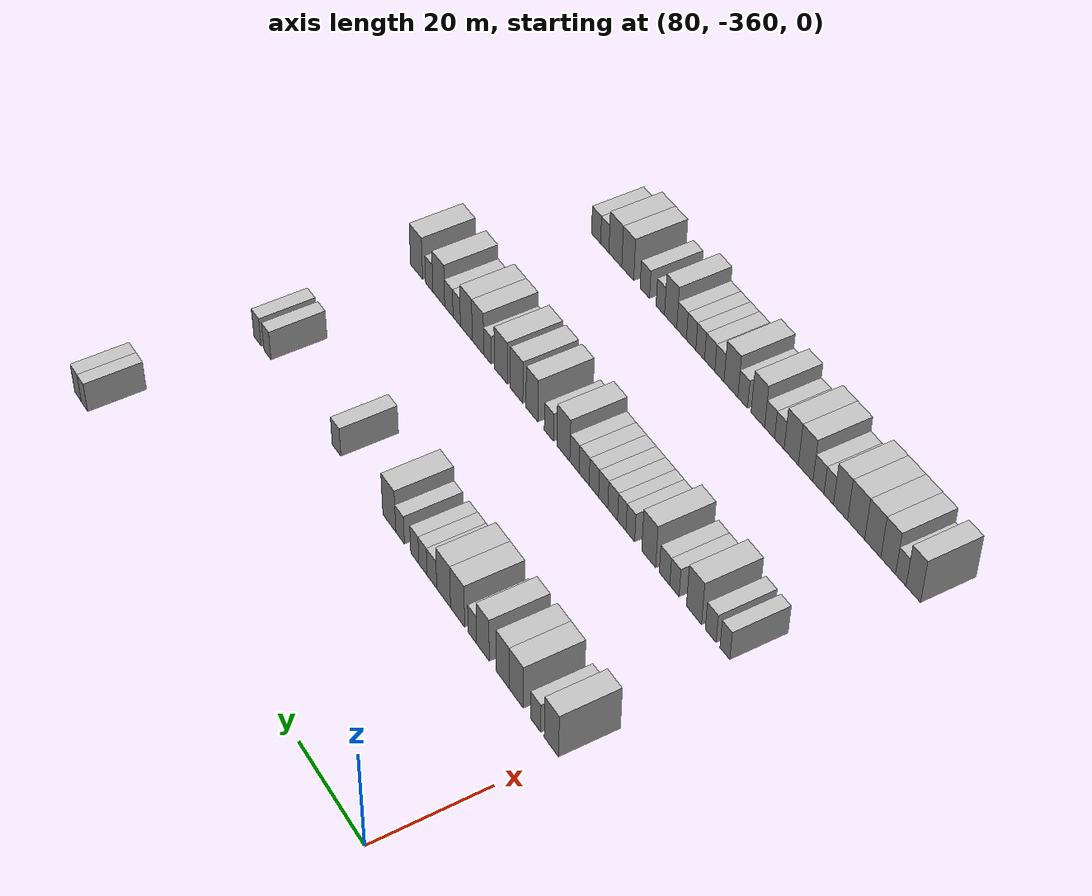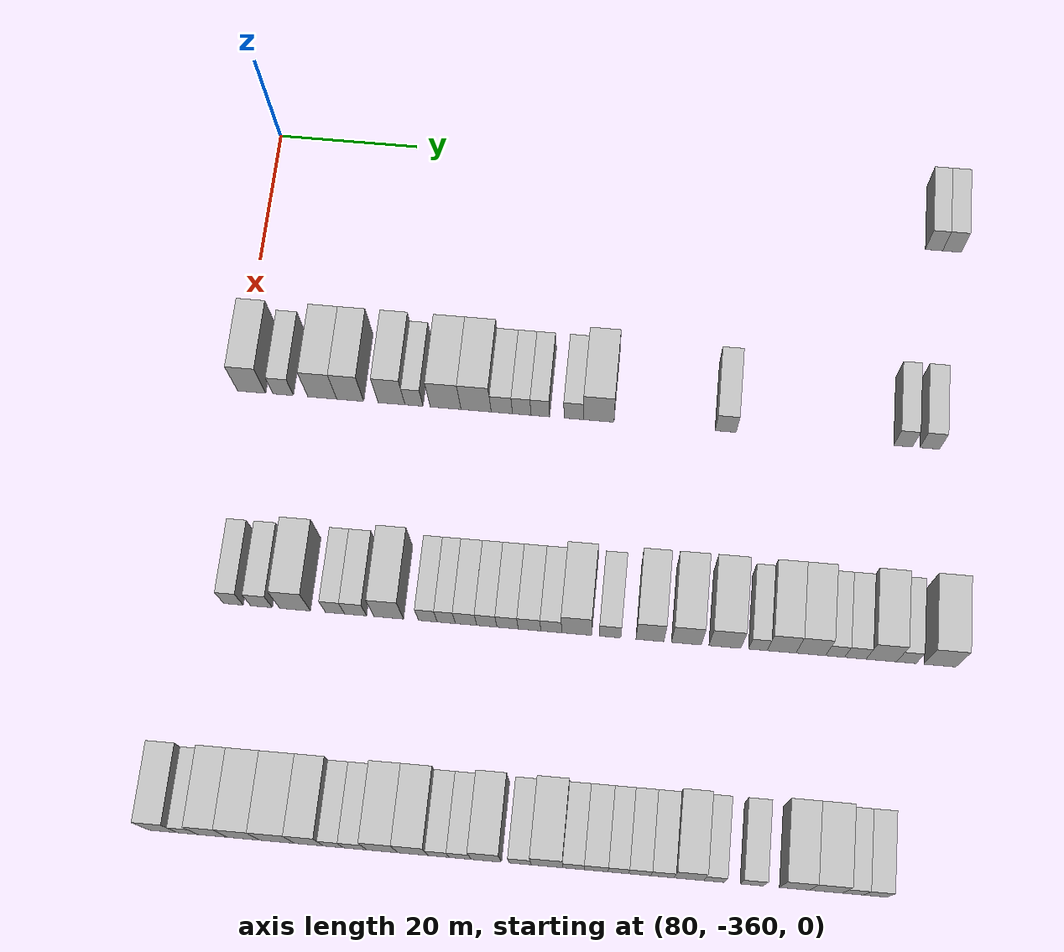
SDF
<sdf version="1.6">
 <world name="default">
  <model name="building_488">
   <static>1</static>
   <pose>85.0000 -264.5834 0 0.000000 0.000000 0.000000</pose>
   <link name="link">
    <pose>0 0 3.00 0 0 0</pose>
    <collision name="collision"><geometry><box><size>10.0000 2.4651 6.0000</size></box></geometry></collision>
    <visual name="visual">
     <cast_shadows>0</cast_shadows>
     <geometry><box><size>10.0000 2.4651 6.0000</size></box></geometry>
     <material>
      <script>
       <uri>model://HANNAS_wall/materials/scripts</uri>
       <uri>model://HANNAS_wall/materials/textures</uri>
       <name>vrc/HANNAS_wall</name>
      </script>
     </material>
    </visual>
   </link>
  </model>
  <model name="building_489">
   <static>1</static>
   <pose>85.0000 -262.0159 0 0.000000 0.000000 0.000000</pose>
   <link name="link">
    <pose>0 0 3.00 0 0 0</pose>
    <collision name="collision"><geometry><box><size>10.0000 2.6700 6.0000</size></box></geometry></collision>
    <visual name="visual">
     <cast_shadows>0</cast_shadows>
     <geometry><box><size>10.0000 2.6700 6.0000</size></box></geometry>
     <material>
      <script>
       <uri>model://HANNAS_wall/materials/scripts</uri>
       <uri>model://HANNAS_wall/materials/textures</uri>
       <name>vrc/HANNAS_wall</name>
      </script>
     </material>
    </visual>
   </link>
  </model>
  <model name="building_702">
   <static>1</static>
   <pose>115.0000 -358.1212 0 0.000000 0.000000 0.000000</pose>
   <link name="link">
    <pose>0 0 4.50 0 0 0</pose>
    <collision name="collision"><geometry><box><size>10.0000 3.9212 9.0000</size></box></geometry></collision>
    <visual name="visual">
     <cast_shadows>0</cast_shadows>
     <geometry><box><size>10.0000 3.9212 9.0000</size></box></geometry>
     <material>
      <script>
       <uri>model://HANNAS_wall/materials/scripts</uri>
       <uri>model://HANNAS_wall/materials/textures</uri>
       <name>vrc/HANNAS_wall</name>
      </script>
     </material>
    </visual>
   </link>
  </model>
  <model name="building_703">
   <static>1</static>
   <pose>115.0000 -353.7324 0 0.000000 0.000000 0.000000</pose>
   <link name="link">
    <pose>0 0 3.00 0 0 0</pose>
    <collision name="collision"><geometry><box><size>10.0000 2.8565 6.0000</size></box></geometry></collision>
    <visual name="visual">
     <cast_shadows>0</cast_shadows>
     <geometry><box><size>10.0000 2.8565 6.0000</size></box></geometry>
     <material>
      <script>
       <uri>model://HANNAS_wall/materials/scripts</uri>
       <uri>model://HANNAS_wall/materials/textures</uri>
       <name>vrc/HANNAS_wall</name>
      </script>
     </material>
    </visual>
   </link>
  </model>
  <model name="building_704">
   <static>1</static>
   <pose>115.0000 -348.2895 0 0.000000 0.000000 0.000000</pose>
   <link name="link">
    <pose>0 0 4.50 0 0 0</pose>
    <collision name="collision"><geometry><box><size>10.0000 4.0292 9.0000</size></box></geometry></collision>
    <visual name="visual">
     <cast_shadows>0</cast_shadows>
     <geometry><box><size>10.0000 4.0292 9.0000</size></box></geometry>
     <material>
      <script>
       <uri>model://HANNAS_wall/materials/scripts</uri>
       <uri>model://HANNAS_wall/materials/textures</uri>
       <name>vrc/HANNAS_wall</name>
      </script>
     </material>
    </visual>
   </link>
  </model>
  <model name="building_705">
   <static>1</static>
   <pose>115.0000 -344.3967 0 0.000000 0.000000 0.000000</pose>
   <link name="link">
    <pose>0 0 4.50 0 0 0</pose>
    <collision name="collision"><geometry><box><size>10.0000 3.7564 9.0000</size></box></geometry></collision>
    <visual name="visual">
     <cast_shadows>0</cast_shadows>
     <geometry><box><size>10.0000 3.7564 9.0000</size></box></geometry>
     <material>
      <script>
       <uri>model://HANNAS_wall/materials/scripts</uri>
       <uri>model://HANNAS_wall/materials/textures</uri>
       <name>vrc/HANNAS_wall</name>
      </script>
     </material>
    </visual>
   </link>
  </model>
  <model name="building_706">
   <static>1</static>
   <pose>115.0000 -338.6489 0 0.000000 0.000000 0.000000</pose>
   <link name="link">
    <pose>0 0 4.50 0 0 0</pose>
    <collision name="collision"><geometry><box><size>10.0000 3.7393 9.0000</size></box></geometry></collision>
    <visual name="visual">
     <cast_shadows>0</cast_shadows>
     <geometry><box><size>10.0000 3.7393 9.0000</size></box></geometry>
     <material>
      <script>
       <uri>model://HANNAS_wall/materials/scripts</uri>
       <uri>model://HANNAS_wall/materials/textures</uri>
       <name>vrc/HANNAS_wall</name>
      </script>
     </material>
    </visual>
   </link>
  </model>
  <model name="building_707">
   <static>1</static>
   <pose>115.0000 -335.5287 0 0.000000 0.000000 0.000000</pose>
   <link name="link">
    <pose>0 0 3.00 0 0 0</pose>
    <collision name="collision"><geometry><box><size>10.0000 2.5011 6.0000</size></box></geometry></collision>
    <visual name="visual">
     <cast_shadows>0</cast_shadows>
     <geometry><box><size>10.0000 2.5011 6.0000</size></box></geometry>
     <material>
      <script>
       <uri>model://HANNAS_wall/materials/scripts</uri>
       <uri>model://HANNAS_wall/materials/textures</uri>
       <name>vrc/HANNAS_wall</name>
      </script>
     </material>
    </visual>
   </link>
  </model>
  <model name="building_708">
   <static>1</static>
   <pose>115.0000 -331.1481 0 0.000000 0.000000 0.000000</pose>
   <link name="link">
    <pose>0 0 4.50 0 0 0</pose>
    <collision name="collision"><geometry><box><size>10.0000 4.2602 9.0000</size></box></geometry></collision>
    <visual name="visual">
     <cast_shadows>0</cast_shadows>
     <geometry><box><size>10.0000 4.2602 9.0000</size></box></geometry>
     <material>
      <script>
       <uri>model://HANNAS_wall/materials/scripts</uri>
       <uri>model://HANNAS_wall/materials/textures</uri>
       <name>vrc/HANNAS_wall</name>
      </script>
     </material>
    </visual>
   </link>
  </model>
  <model name="building_709">
   <static>1</static>
   <pose>115.0000 -326.9180 0 0.000000 0.000000 0.000000</pose>
   <link name="link">
    <pose>0 0 4.50 0 0 0</pose>
    <collision name="collision"><geometry><box><size>10.0000 4.2000 9.0000</size></box></geometry></collision>
    <visual name="visual">
     <cast_shadows>0</cast_shadows>
     <geometry><box><size>10.0000 4.2000 9.0000</size></box></geometry>
     <material>
      <script>
       <uri>model://HANNAS_wall/materials/scripts</uri>
       <uri>model://HANNAS_wall/materials/textures</uri>
       <name>vrc/HANNAS_wall</name>
      </script>
     </material>
    </visual>
   </link>
  </model>
  <model name="building_710">
   <static>1</static>
   <pose>115.0000 -323.3475 0 0.000000 0.000000 0.000000</pose>
   <link name="link">
    <pose>0 0 3.00 0 0 0</pose>
    <collision name="collision"><geometry><box><size>10.0000 2.9410 6.0000</size></box></geometry></collision>
    <visual name="visual">
     <cast_shadows>0</cast_shadows>
     <geometry><box><size>10.0000 2.9410 6.0000</size></box></geometry>
     <material>
      <script>
       <uri>model://HANNAS_wall/materials/scripts</uri>
       <uri>model://HANNAS_wall/materials/textures</uri>
       <name>vrc/HANNAS_wall</name>
      </script>
     </material>
    </visual>
   </link>
  </model>
  <model name="building_711">
   <static>1</static>
   <pose>115.0000 -320.5965 0 0.000000 0.000000 0.000000</pose>
   <link name="link">
    <pose>0 0 3.00 0 0 0</pose>
    <collision name="collision"><geometry><box><size>10.0000 2.5610 6.0000</size></box></geometry></collision>
    <visual name="visual">
     <cast_shadows>0</cast_shadows>
     <geometry><box><size>10.0000 2.5610 6.0000</size></box></geometry>
     <material>
      <script>
       <uri>model://HANNAS_wall/materials/scripts</uri>
       <uri>model://HANNAS_wall/materials/textures</uri>
       <name>vrc/HANNAS_wall</name>
      </script>
     </material>
    </visual>
   </link>
  </model>
  <model name="building_712">
   <static>1</static>
   <pose>115.0000 -318.0344 0 0.000000 0.000000 0.000000</pose>
   <link name="link">
    <pose>0 0 3.00 0 0 0</pose>
    <collision name="collision"><geometry><box><size>10.0000 2.5632 6.0000</size></box></geometry></collision>
    <visual name="visual">
     <cast_shadows>0</cast_shadows>
     <geometry><box><size>10.0000 2.5632 6.0000</size></box></geometry>
     <material>
      <script>
       <uri>model://HANNAS_wall/materials/scripts</uri>
       <uri>model://HANNAS_wall/materials/textures</uri>
       <name>vrc/HANNAS_wall</name>
      </script>
     </material>
    </visual>
   </link>
  </model>
  <model name="building_713">
   <static>1</static>
   <pose>115.0000 -313.4007 0 0.000000 0.000000 0.000000</pose>
   <link name="link">
    <pose>0 0 3.00 0 0 0</pose>
    <collision name="collision"><geometry><box><size>10.0000 2.7044 6.0000</size></box></geometry></collision>
    <visual name="visual">
     <cast_shadows>0</cast_shadows>
     <geometry><box><size>10.0000 2.7044 6.0000</size></box></geometry>
     <material>
      <script>
       <uri>model://HANNAS_wall/materials/scripts</uri>
       <uri>model://HANNAS_wall/materials/textures</uri>
       <name>vrc/HANNAS_wall</name>
      </script>
     </material>
    </visual>
   </link>
  </model>
  <model name="building_714">
   <static>1</static>
   <pose>115.0000 -309.9594 0 0.000000 0.000000 0.000000</pose>
   <link name="link">
    <pose>0 0 4.50 0 0 0</pose>
    <collision name="collision"><geometry><box><size>10.0000 4.1780 9.0000</size></box></geometry></collision>
    <visual name="visual">
     <cast_shadows>0</cast_shadows>
     <geometry><box><size>10.0000 4.1780 9.0000</size></box></geometry>
     <material>
      <script>
       <uri>model://HANNAS_wall/materials/scripts</uri>
       <uri>model://HANNAS_wall/materials/textures</uri>
       <name>vrc/HANNAS_wall</name>
      </script>
     </material>
    </visual>
   </link>
  </model>
  <model name="building_715">
   <static>1</static>
   <pose>115.0000 -292.5074 0 0.000000 0.000000 0.000000</pose>
   <link name="link">
    <pose>0 0 3.00 0 0 0</pose>
    <collision name="collision"><geometry><box><size>10.0000 2.9087 6.0000</size></box></geometry></collision>
    <visual name="visual">
     <cast_shadows>0</cast_shadows>
     <geometry><box><size>10.0000 2.9087 6.0000</size></box></geometry>
     <material>
      <script>
       <uri>model://HANNAS_wall/materials/scripts</uri>
       <uri>model://HANNAS_wall/materials/textures</uri>
       <name>vrc/HANNAS_wall</name>
      </script>
     </material>
    </visual>
   </link>
  </model>
  <model name="building_716">
   <static>1</static>
   <pose>115.0000 -268.2007 0 0.000000 0.000000 0.000000</pose>
   <link name="link">
    <pose>0 0 3.00 0 0 0</pose>
    <collision name="collision"><geometry><box><size>10.0000 2.5682 6.0000</size></box></geometry></collision>
    <visual name="visual">
     <cast_shadows>0</cast_shadows>
     <geometry><box><size>10.0000 2.5682 6.0000</size></box></geometry>
     <material>
      <script>
       <uri>model://HANNAS_wall/materials/scripts</uri>
       <uri>model://HANNAS_wall/materials/textures</uri>
       <name>vrc/HANNAS_wall</name>
      </script>
     </material>
    </visual>
   </link>
  </model>
  <model name="building_717">
   <static>1</static>
   <pose>115.0000 -264.5697 0 0.000000 0.000000 0.000000</pose>
   <link name="link">
    <pose>0 0 3.00 0 0 0</pose>
    <collision name="collision"><geometry><box><size>10.0000 2.6939 6.0000</size></box></geometry></collision>
    <visual name="visual">
     <cast_shadows>0</cast_shadows>
     <geometry><box><size>10.0000 2.6939 6.0000</size></box></geometry>
     <material>
      <script>
       <uri>model://HANNAS_wall/materials/scripts</uri>
       <uri>model://HANNAS_wall/materials/textures</uri>
       <name>vrc/HANNAS_wall</name>
      </script>
     </material>
    </visual>
   </link>
  </model>
  <model name="building_912">
   <static>1</static>
   <pose>145.0000 -355.9528 0 0.000000 0.000000 0.000000</pose>
   <link name="link">
    <pose>0 0 3.00 0 0 0</pose>
    <collision name="collision"><geometry><box><size>10.0000 2.6077 6.0000</size></box></geometry></collision>
    <visual name="visual">
     <cast_shadows>0</cast_shadows>
     <geometry><box><size>10.0000 2.6077 6.0000</size></box></geometry>
     <material>
      <script>
       <uri>model://HANNAS_wall/materials/scripts</uri>
       <uri>model://HANNAS_wall/materials/textures</uri>
       <name>vrc/HANNAS_wall</name>
      </script>
     </material>
    </visual>
   </link>
  </model>
  <model name="building_913">
   <static>1</static>
   <pose>145.0000 -352.2047 0 0.000000 0.000000 0.000000</pose>
   <link name="link">
    <pose>0 0 3.00 0 0 0</pose>
    <collision name="collision"><geometry><box><size>10.0000 2.8885 6.0000</size></box></geometry></collision>
    <visual name="visual">
     <cast_shadows>0</cast_shadows>
     <geometry><box><size>10.0000 2.8885 6.0000</size></box></geometry>
     <material>
      <script>
       <uri>model://HANNAS_wall/materials/scripts</uri>
       <uri>model://HANNAS_wall/materials/textures</uri>
       <name>vrc/HANNAS_wall</name>
      </script>
     </material>
    </visual>
   </link>
  </model>
  <model name="building_914">
   <static>1</static>
   <pose>145.0000 -347.7194 0 0.000000 0.000000 0.000000</pose>
   <link name="link">
    <pose>0 0 4.50 0 0 0</pose>
    <collision name="collision"><geometry><box><size>10.0000 4.0820 9.0000</size></box></geometry></collision>
    <visual name="visual">
     <cast_shadows>0</cast_shadows>
     <geometry><box><size>10.0000 4.0820 9.0000</size></box></geometry>
     <material>
      <script>
       <uri>model://HANNAS_wall/materials/scripts</uri>
       <uri>model://HANNAS_wall/materials/textures</uri>
       <name>vrc/HANNAS_wall</name>
      </script>
     </material>
    </visual>
   </link>
  </model>
  <model name="building_915">
   <static>1</static>
   <pose>145.0000 -342.3995 0 0.000000 0.000000 0.000000</pose>
   <link name="link">
    <pose>0 0 3.00 0 0 0</pose>
    <collision name="collision"><geometry><box><size>10.0000 2.5578 6.0000</size></box></geometry></collision>
    <visual name="visual">
     <cast_shadows>0</cast_shadows>
     <geometry><box><size>10.0000 2.5578 6.0000</size></box></geometry>
     <material>
      <script>
       <uri>model://HANNAS_wall/materials/scripts</uri>
       <uri>model://HANNAS_wall/materials/textures</uri>
       <name>vrc/HANNAS_wall</name>
      </script>
     </material>
    </visual>
   </link>
  </model>
  <model name="building_916">
   <static>1</static>
   <pose>145.0000 -339.6624 0 0.000000 0.000000 0.000000</pose>
   <link name="link">
    <pose>0 0 3.00 0 0 0</pose>
    <collision name="collision"><geometry><box><size>10.0000 2.9163 6.0000</size></box></geometry></collision>
    <visual name="visual">
     <cast_shadows>0</cast_shadows>
     <geometry><box><size>10.0000 2.9163 6.0000</size></box></geometry>
     <material>
      <script>
       <uri>model://HANNAS_wall/materials/scripts</uri>
       <uri>model://HANNAS_wall/materials/textures</uri>
       <name>vrc/HANNAS_wall</name>
      </script>
     </material>
    </visual>
   </link>
  </model>
  <model name="building_917">
   <static>1</static>
   <pose>145.0000 -335.2434 0 0.000000 0.000000 0.000000</pose>
   <link name="link">
    <pose>0 0 4.50 0 0 0</pose>
    <collision name="collision"><geometry><box><size>10.0000 3.9217 9.0000</size></box></geometry></collision>
    <visual name="visual">
     <cast_shadows>0</cast_shadows>
     <geometry><box><size>10.0000 3.9217 9.0000</size></box></geometry>
     <material>
      <script>
       <uri>model://HANNAS_wall/materials/scripts</uri>
       <uri>model://HANNAS_wall/materials/textures</uri>
       <name>vrc/HANNAS_wall</name>
      </script>
     </material>
    </visual>
   </link>
  </model>
  <model name="building_918">
   <static>1</static>
   <pose>145.0000 -330.0368 0 0.000000 0.000000 0.000000</pose>
   <link name="link">
    <pose>0 0 3.00 0 0 0</pose>
    <collision name="collision"><geometry><box><size>10.0000 2.4914 6.0000</size></box></geometry></collision>
    <visual name="visual">
     <cast_shadows>0</cast_shadows>
     <geometry><box><size>10.0000 2.4914 6.0000</size></box></geometry>
     <material>
      <script>
       <uri>model://HANNAS_wall/materials/scripts</uri>
       <uri>model://HANNAS_wall/materials/textures</uri>
       <name>vrc/HANNAS_wall</name>
      </script>
     </material>
    </visual>
   </link>
  </model>
  <model name="building_919">
   <static>1</static>
   <pose>145.0000 -327.5866 0 0.000000 0.000000 0.000000</pose>
   <link name="link">
    <pose>0 0 3.00 0 0 0</pose>
    <collision name="collision"><geometry><box><size>10.0000 2.4090 6.0000</size></box></geometry></collision>
    <visual name="visual">
     <cast_shadows>0</cast_shadows>
     <geometry><box><size>10.0000 2.4090 6.0000</size></box></geometry>
     <material>
      <script>
       <uri>model://HANNAS_wall/materials/scripts</uri>
       <uri>model://HANNAS_wall/materials/textures</uri>
       <name>vrc/HANNAS_wall</name>
      </script>
     </material>
    </visual>
   </link>
  </model>
  <model name="building_920">
   <static>1</static>
   <pose>145.0000 -324.9644 0 0.000000 0.000000 0.000000</pose>
   <link name="link">
    <pose>0 0 3.00 0 0 0</pose>
    <collision name="collision"><geometry><box><size>10.0000 2.8355 6.0000</size></box></geometry></collision>
    <visual name="visual">
     <cast_shadows>0</cast_shadows>
     <geometry><box><size>10.0000 2.8355 6.0000</size></box></geometry>
     <material>
      <script>
       <uri>model://HANNAS_wall/materials/scripts</uri>
       <uri>model://HANNAS_wall/materials/textures</uri>
       <name>vrc/HANNAS_wall</name>
      </script>
     </material>
    </visual>
   </link>
  </model>
  <model name="building_921">
   <static>1</static>
   <pose>145.0000 -322.2116 0 0.000000 0.000000 0.000000</pose>
   <link name="link">
    <pose>0 0 3.00 0 0 0</pose>
    <collision name="collision"><geometry><box><size>10.0000 2.6700 6.0000</size></box></geometry></collision>
    <visual name="visual">
     <cast_shadows>0</cast_shadows>
     <geometry><box><size>10.0000 2.6700 6.0000</size></box></geometry>
     <material>
      <script>
       <uri>model://HANNAS_wall/materials/scripts</uri>
       <uri>model://HANNAS_wall/materials/textures</uri>
       <name>vrc/HANNAS_wall</name>
      </script>
     </material>
    </visual>
   </link>
  </model>
  <model name="building_922">
   <static>1</static>
   <pose>145.0000 -319.4658 0 0.000000 0.000000 0.000000</pose>
   <link name="link">
    <pose>0 0 3.00 0 0 0</pose>
    <collision name="collision"><geometry><box><size>10.0000 2.8217 6.0000</size></box></geometry></collision>
    <visual name="visual">
     <cast_shadows>0</cast_shadows>
     <geometry><box><size>10.0000 2.8217 6.0000</size></box></geometry>
     <material>
      <script>
       <uri>model://HANNAS_wall/materials/scripts</uri>
       <uri>model://HANNAS_wall/materials/textures</uri>
       <name>vrc/HANNAS_wall</name>
      </script>
     </material>
    </visual>
   </link>
  </model>
  <model name="building_923">
   <static>1</static>
   <pose>145.0000 -316.5617 0 0.000000 0.000000 0.000000</pose>
   <link name="link">
    <pose>0 0 3.00 0 0 0</pose>
    <collision name="collision"><geometry><box><size>10.0000 2.9863 6.0000</size></box></geometry></collision>
    <visual name="visual">
     <cast_shadows>0</cast_shadows>
     <geometry><box><size>10.0000 2.9863 6.0000</size></box></geometry>
     <material>
      <script>
       <uri>model://HANNAS_wall/materials/scripts</uri>
       <uri>model://HANNAS_wall/materials/textures</uri>
       <name>vrc/HANNAS_wall</name>
      </script>
     </material>
    </visual>
   </link>
  </model>
  <model name="building_924">
   <static>1</static>
   <pose>145.0000 -313.6860 0 0.000000 0.000000 0.000000</pose>
   <link name="link">
    <pose>0 0 3.00 0 0 0</pose>
    <collision name="collision"><geometry><box><size>10.0000 2.7651 6.0000</size></box></geometry></collision>
    <visual name="visual">
     <cast_shadows>0</cast_shadows>
     <geometry><box><size>10.0000 2.7651 6.0000</size></box></geometry>
     <material>
      <script>
       <uri>model://HANNAS_wall/materials/scripts</uri>
       <uri>model://HANNAS_wall/materials/textures</uri>
       <name>vrc/HANNAS_wall</name>
      </script>
     </material>
    </visual>
   </link>
  </model>
  <model name="building_925">
   <static>1</static>
   <pose>145.0000 -310.3268 0 0.000000 0.000000 0.000000</pose>
   <link name="link">
    <pose>0 0 4.50 0 0 0</pose>
    <collision name="collision"><geometry><box><size>10.0000 3.9533 9.0000</size></box></geometry></collision>
    <visual name="visual">
     <cast_shadows>0</cast_shadows>
     <geometry><box><size>10.0000 3.9533 9.0000</size></box></geometry>
     <material>
      <script>
       <uri>model://HANNAS_wall/materials/scripts</uri>
       <uri>model://HANNAS_wall/materials/textures</uri>
       <name>vrc/HANNAS_wall</name>
      </script>
     </material>
    </visual>
   </link>
  </model>
  <model name="building_926">
   <static>1</static>
   <pose>145.0000 -305.9297 0 0.000000 0.000000 0.000000</pose>
   <link name="link">
    <pose>0 0 3.00 0 0 0</pose>
    <collision name="collision"><geometry><box><size>10.0000 2.8409 6.0000</size></box></geometry></collision>
    <visual name="visual">
     <cast_shadows>0</cast_shadows>
     <geometry><box><size>10.0000 2.8409 6.0000</size></box></geometry>
     <material>
      <script>
       <uri>model://HANNAS_wall/materials/scripts</uri>
       <uri>model://HANNAS_wall/materials/textures</uri>
       <name>vrc/HANNAS_wall</name>
      </script>
     </material>
    </visual>
   </link>
  </model>
  <model name="building_927">
   <static>1</static>
   <pose>145.0000 -300.6676 0 0.000000 0.000000 0.000000</pose>
   <link name="link">
    <pose>0 0 4.50 0 0 0</pose>
    <collision name="collision"><geometry><box><size>10.0000 3.6832 9.0000</size></box></geometry></collision>
    <visual name="visual">
     <cast_shadows>0</cast_shadows>
     <geometry><box><size>10.0000 3.6832 9.0000</size></box></geometry>
     <material>
      <script>
       <uri>model://HANNAS_wall/materials/scripts</uri>
       <uri>model://HANNAS_wall/materials/textures</uri>
       <name>vrc/HANNAS_wall</name>
      </script>
     </material>
    </visual>
   </link>
  </model>
  <model name="building_928">
   <static>1</static>
   <pose>145.0000 -295.8594 0 0.000000 0.000000 0.000000</pose>
   <link name="link">
    <pose>0 0 4.50 0 0 0</pose>
    <collision name="collision"><geometry><box><size>10.0000 3.9333 9.0000</size></box></geometry></collision>
    <visual name="visual">
     <cast_shadows>0</cast_shadows>
     <geometry><box><size>10.0000 3.9333 9.0000</size></box></geometry>
     <material>
      <script>
       <uri>model://HANNAS_wall/materials/scripts</uri>
       <uri>model://HANNAS_wall/materials/textures</uri>
       <name>vrc/HANNAS_wall</name>
      </script>
     </material>
    </visual>
   </link>
  </model>
  <model name="building_929">
   <static>1</static>
   <pose>145.0000 -290.7915 0 0.000000 0.000000 0.000000</pose>
   <link name="link">
    <pose>0 0 4.50 0 0 0</pose>
    <collision name="collision"><geometry><box><size>10.0000 4.2025 9.0000</size></box></geometry></collision>
    <visual name="visual">
     <cast_shadows>0</cast_shadows>
     <geometry><box><size>10.0000 4.2025 9.0000</size></box></geometry>
     <material>
      <script>
       <uri>model://HANNAS_wall/materials/scripts</uri>
       <uri>model://HANNAS_wall/materials/textures</uri>
       <name>vrc/HANNAS_wall</name>
      </script>
     </material>
    </visual>
   </link>
  </model>
  <model name="building_930">
   <static>1</static>
   <pose>145.0000 -286.4634 0 0.000000 0.000000 0.000000</pose>
   <link name="link">
    <pose>0 0 3.00 0 0 0</pose>
    <collision name="collision"><geometry><box><size>10.0000 2.4538 6.0000</size></box></geometry></collision>
    <visual name="visual">
     <cast_shadows>0</cast_shadows>
     <geometry><box><size>10.0000 2.4538 6.0000</size></box></geometry>
     <material>
      <script>
       <uri>model://HANNAS_wall/materials/scripts</uri>
       <uri>model://HANNAS_wall/materials/textures</uri>
       <name>vrc/HANNAS_wall</name>
      </script>
     </material>
    </visual>
   </link>
  </model>
  <model name="building_931">
   <static>1</static>
   <pose>145.0000 -283.3486 0 0.000000 0.000000 0.000000</pose>
   <link name="link">
    <pose>0 0 4.50 0 0 0</pose>
    <collision name="collision"><geometry><box><size>10.0000 3.7758 9.0000</size></box></geometry></collision>
    <visual name="visual">
     <cast_shadows>0</cast_shadows>
     <geometry><box><size>10.0000 3.7758 9.0000</size></box></geometry>
     <material>
      <script>
       <uri>model://HANNAS_wall/materials/scripts</uri>
       <uri>model://HANNAS_wall/materials/textures</uri>
       <name>vrc/HANNAS_wall</name>
      </script>
     </material>
    </visual>
   </link>
  </model>
  <model name="building_932">
   <static>1</static>
   <pose>145.0000 -279.5146 0 0.000000 0.000000 0.000000</pose>
   <link name="link">
    <pose>0 0 4.50 0 0 0</pose>
    <collision name="collision"><geometry><box><size>10.0000 3.8922 9.0000</size></box></geometry></collision>
    <visual name="visual">
     <cast_shadows>0</cast_shadows>
     <geometry><box><size>10.0000 3.8922 9.0000</size></box></geometry>
     <material>
      <script>
       <uri>model://HANNAS_wall/materials/scripts</uri>
       <uri>model://HANNAS_wall/materials/textures</uri>
       <name>vrc/HANNAS_wall</name>
      </script>
     </material>
    </visual>
   </link>
  </model>
  <model name="building_933">
   <static>1</static>
   <pose>145.0000 -276.3223 0 0.000000 0.000000 0.000000</pose>
   <link name="link">
    <pose>0 0 3.00 0 0 0</pose>
    <collision name="collision"><geometry><box><size>10.0000 2.4924 6.0000</size></box></geometry></collision>
    <visual name="visual">
     <cast_shadows>0</cast_shadows>
     <geometry><box><size>10.0000 2.4924 6.0000</size></box></geometry>
     <material>
      <script>
       <uri>model://HANNAS_wall/materials/scripts</uri>
       <uri>model://HANNAS_wall/materials/textures</uri>
       <name>vrc/HANNAS_wall</name>
      </script>
     </material>
    </visual>
   </link>
  </model>
  <model name="building_934">
   <static>1</static>
   <pose>145.0000 -273.6685 0 0.000000 0.000000 0.000000</pose>
   <link name="link">
    <pose>0 0 3.00 0 0 0</pose>
    <collision name="collision"><geometry><box><size>10.0000 2.8152 6.0000</size></box></geometry></collision>
    <visual name="visual">
     <cast_shadows>0</cast_shadows>
     <geometry><box><size>10.0000 2.8152 6.0000</size></box></geometry>
     <material>
      <script>
       <uri>model://HANNAS_wall/materials/scripts</uri>
       <uri>model://HANNAS_wall/materials/textures</uri>
       <name>vrc/HANNAS_wall</name>
      </script>
     </material>
    </visual>
   </link>
  </model>
  <model name="building_935">
   <static>1</static>
   <pose>145.0000 -270.2610 0 0.000000 0.000000 0.000000</pose>
   <link name="link">
    <pose>0 0 4.50 0 0 0</pose>
    <collision name="collision"><geometry><box><size>10.0000 3.9998 9.0000</size></box></geometry></collision>
    <visual name="visual">
     <cast_shadows>0</cast_shadows>
     <geometry><box><size>10.0000 3.9998 9.0000</size></box></geometry>
     <material>
      <script>
       <uri>model://HANNAS_wall/materials/scripts</uri>
       <uri>model://HANNAS_wall/materials/textures</uri>
       <name>vrc/HANNAS_wall</name>
      </script>
     </material>
    </visual>
   </link>
  </model>
  <model name="building_936">
   <static>1</static>
   <pose>145.0000 -266.9858 0 0.000000 0.000000 0.000000</pose>
   <link name="link">
    <pose>0 0 3.00 0 0 0</pose>
    <collision name="collision"><geometry><box><size>10.0000 2.5506 6.0000</size></box></geometry></collision>
    <visual name="visual">
     <cast_shadows>0</cast_shadows>
     <geometry><box><size>10.0000 2.5506 6.0000</size></box></geometry>
     <material>
      <script>
       <uri>model://HANNAS_wall/materials/scripts</uri>
       <uri>model://HANNAS_wall/materials/textures</uri>
       <name>vrc/HANNAS_wall</name>
      </script>
     </material>
    </visual>
   </link>
  </model>
  <model name="building_937">
   <static>1</static>
   <pose>145.0000 -262.6036 0 0.000000 0.000000 0.000000</pose>
   <link name="link">
    <pose>0 0 4.50 0 0 0</pose>
    <collision name="collision"><geometry><box><size>10.0000 4.2138 9.0000</size></box></geometry></collision>
    <visual name="visual">
     <cast_shadows>0</cast_shadows>
     <geometry><box><size>10.0000 4.2138 9.0000</size></box></geometry>
     <material>
      <script>
       <uri>model://HANNAS_wall/materials/scripts</uri>
       <uri>model://HANNAS_wall/materials/textures</uri>
       <name>vrc/HANNAS_wall</name>
      </script>
     </material>
    </visual>
   </link>
  </model>
  <model name="building_1145">
   <static>1</static>
   <pose>175.0000 -360.1957 0 0.000000 0.000000 0.000000</pose>
   <link name="link">
    <pose>0 0 4.50 0 0 0</pose>
    <collision name="collision"><geometry><box><size>10.0000 3.6201 9.0000</size></box></geometry></collision>
    <visual name="visual">
     <cast_shadows>0</cast_shadows>
     <geometry><box><size>10.0000 3.6201 9.0000</size></box></geometry>
     <material>
      <script>
       <uri>model://HANNAS_wall/materials/scripts</uri>
       <uri>model://HANNAS_wall/materials/textures</uri>
       <name>vrc/HANNAS_wall</name>
      </script>
     </material>
    </visual>
   </link>
  </model>
  <model name="building_1146">
   <static>1</static>
   <pose>175.0000 -357.0702 0 0.000000 0.000000 0.000000</pose>
   <link name="link">
    <pose>0 0 3.00 0 0 0</pose>
    <collision name="collision"><geometry><box><size>10.0000 2.6310 6.0000</size></box></geometry></collision>
    <visual name="visual">
     <cast_shadows>0</cast_shadows>
     <geometry><box><size>10.0000 2.6310 6.0000</size></box></geometry>
     <material>
      <script>
       <uri>model://HANNAS_wall/materials/scripts</uri>
       <uri>model://HANNAS_wall/materials/textures</uri>
       <name>vrc/HANNAS_wall</name>
      </script>
     </material>
    </visual>
   </link>
  </model>
  <model name="building_1147">
   <static>1</static>
   <pose>175.0000 -353.8920 0 0.000000 0.000000 0.000000</pose>
   <link name="link">
    <pose>0 0 4.50 0 0 0</pose>
    <collision name="collision"><geometry><box><size>10.0000 3.7254 9.0000</size></box></geometry></collision>
    <visual name="visual">
     <cast_shadows>0</cast_shadows>
     <geometry><box><size>10.0000 3.7254 9.0000</size></box></geometry>
     <material>
      <script>
       <uri>model://HANNAS_wall/materials/scripts</uri>
       <uri>model://HANNAS_wall/materials/textures</uri>
       <name>vrc/HANNAS_wall</name>
      </script>
     </material>
    </visual>
   </link>
  </model>
  <model name="building_1148">
   <static>1</static>
   <pose>175.0000 -349.9536 0 0.000000 0.000000 0.000000</pose>
   <link name="link">
    <pose>0 0 4.50 0 0 0</pose>
    <collision name="collision"><geometry><box><size>10.0000 4.1515 9.0000</size></box></geometry></collision>
    <visual name="visual">
     <cast_shadows>0</cast_shadows>
     <geometry><box><size>10.0000 4.1515 9.0000</size></box></geometry>
     <material>
      <script>
       <uri>model://HANNAS_wall/materials/scripts</uri>
       <uri>model://HANNAS_wall/materials/textures</uri>
       <name>vrc/HANNAS_wall</name>
      </script>
     </material>
    </visual>
   </link>
  </model>
  <model name="building_1149">
   <static>1</static>
   <pose>175.0000 -345.6649 0 0.000000 0.000000 0.000000</pose>
   <link name="link">
    <pose>0 0 4.50 0 0 0</pose>
    <collision name="collision"><geometry><box><size>10.0000 4.4259 9.0000</size></box></geometry></collision>
    <visual name="visual">
     <cast_shadows>0</cast_shadows>
     <geometry><box><size>10.0000 4.4259 9.0000</size></box></geometry>
     <material>
      <script>
       <uri>model://HANNAS_wall/materials/scripts</uri>
       <uri>model://HANNAS_wall/materials/textures</uri>
       <name>vrc/HANNAS_wall</name>
      </script>
     </material>
    </visual>
   </link>
  </model>
  <model name="building_1150">
   <static>1</static>
   <pose>175.0000 -341.5893 0 0.000000 0.000000 0.000000</pose>
   <link name="link">
    <pose>0 0 4.50 0 0 0</pose>
    <collision name="collision"><geometry><box><size>10.0000 3.7253 9.0000</size></box></geometry></collision>
    <visual name="visual">
     <cast_shadows>0</cast_shadows>
     <geometry><box><size>10.0000 3.7253 9.0000</size></box></geometry>
     <material>
      <script>
       <uri>model://HANNAS_wall/materials/scripts</uri>
       <uri>model://HANNAS_wall/materials/textures</uri>
       <name>vrc/HANNAS_wall</name>
      </script>
     </material>
    </visual>
   </link>
  </model>
  <model name="building_1151">
   <static>1</static>
   <pose>175.0000 -338.4604 0 0.000000 0.000000 0.000000</pose>
   <link name="link">
    <pose>0 0 3.00 0 0 0</pose>
    <collision name="collision"><geometry><box><size>10.0000 2.5326 6.0000</size></box></geometry></collision>
    <visual name="visual">
     <cast_shadows>0</cast_shadows>
     <geometry><box><size>10.0000 2.5326 6.0000</size></box></geometry>
     <material>
      <script>
       <uri>model://HANNAS_wall/materials/scripts</uri>
       <uri>model://HANNAS_wall/materials/textures</uri>
       <name>vrc/HANNAS_wall</name>
      </script>
     </material>
    </visual>
   </link>
  </model>
  <model name="building_1152">
   <static>1</static>
   <pose>175.0000 -335.7173 0 0.000000 0.000000 0.000000</pose>
   <link name="link">
    <pose>0 0 3.00 0 0 0</pose>
    <collision name="collision"><geometry><box><size>10.0000 2.9534 6.0000</size></box></geometry></collision>
    <visual name="visual">
     <cast_shadows>0</cast_shadows>
     <geometry><box><size>10.0000 2.9534 6.0000</size></box></geometry>
     <material>
      <script>
       <uri>model://HANNAS_wall/materials/scripts</uri>
       <uri>model://HANNAS_wall/materials/textures</uri>
       <name>vrc/HANNAS_wall</name>
      </script>
     </material>
    </visual>
   </link>
  </model>
  <model name="building_1153">
   <static>1</static>
   <pose>175.0000 -332.2598 0 0.000000 0.000000 0.000000</pose>
   <link name="link">
    <pose>0 0 4.50 0 0 0</pose>
    <collision name="collision"><geometry><box><size>10.0000 3.9615 9.0000</size></box></geometry></collision>
    <visual name="visual">
     <cast_shadows>0</cast_shadows>
     <geometry><box><size>10.0000 3.9615 9.0000</size></box></geometry>
     <material>
      <script>
       <uri>model://HANNAS_wall/materials/scripts</uri>
       <uri>model://HANNAS_wall/materials/textures</uri>
       <name>vrc/HANNAS_wall</name>
      </script>
     </material>
    </visual>
   </link>
  </model>
  <model name="building_1154">
   <static>1</static>
   <pose>175.0000 -328.3304 0 0.000000 0.000000 0.000000</pose>
   <link name="link">
    <pose>0 0 4.50 0 0 0</pose>
    <collision name="collision"><geometry><box><size>10.0000 3.8974 9.0000</size></box></geometry></collision>
    <visual name="visual">
     <cast_shadows>0</cast_shadows>
     <geometry><box><size>10.0000 3.8974 9.0000</size></box></geometry>
     <material>
      <script>
       <uri>model://HANNAS_wall/materials/scripts</uri>
       <uri>model://HANNAS_wall/materials/textures</uri>
       <name>vrc/HANNAS_wall</name>
      </script>
     </material>
    </visual>
   </link>
  </model>
  <model name="building_1155">
   <static>1</static>
   <pose>175.0000 -325.0580 0 0.000000 0.000000 0.000000</pose>
   <link name="link">
    <pose>0 0 3.00 0 0 0</pose>
    <collision name="collision"><geometry><box><size>10.0000 2.6473 6.0000</size></box></geometry></collision>
    <visual name="visual">
     <cast_shadows>0</cast_shadows>
     <geometry><box><size>10.0000 2.6473 6.0000</size></box></geometry>
     <material>
      <script>
       <uri>model://HANNAS_wall/materials/scripts</uri>
       <uri>model://HANNAS_wall/materials/textures</uri>
       <name>vrc/HANNAS_wall</name>
      </script>
     </material>
    </visual>
   </link>
  </model>
  <model name="building_1156">
   <static>1</static>
   <pose>175.0000 -322.3524 0 0.000000 0.000000 0.000000</pose>
   <link name="link">
    <pose>0 0 3.00 0 0 0</pose>
    <collision name="collision"><geometry><box><size>10.0000 2.7639 6.0000</size></box></geometry></collision>
    <visual name="visual">
     <cast_shadows>0</cast_shadows>
     <geometry><box><size>10.0000 2.7639 6.0000</size></box></geometry>
     <material>
      <script>
       <uri>model://HANNAS_wall/materials/scripts</uri>
       <uri>model://HANNAS_wall/materials/textures</uri>
       <name>vrc/HANNAS_wall</name>
      </script>
     </material>
    </visual>
   </link>
  </model>
  <model name="building_1157">
   <static>1</static>
   <pose>175.0000 -319.0597 0 0.000000 0.000000 0.000000</pose>
   <link name="link">
    <pose>0 0 4.50 0 0 0</pose>
    <collision name="collision"><geometry><box><size>10.0000 3.8216 9.0000</size></box></geometry></collision>
    <visual name="visual">
     <cast_shadows>0</cast_shadows>
     <geometry><box><size>10.0000 3.8216 9.0000</size></box></geometry>
     <material>
      <script>
       <uri>model://HANNAS_wall/materials/scripts</uri>
       <uri>model://HANNAS_wall/materials/textures</uri>
       <name>vrc/HANNAS_wall</name>
      </script>
     </material>
    </visual>
   </link>
  </model>
  <model name="building_1158">
   <static>1</static>
   <pose>175.0000 -314.7647 0 0.000000 0.000000 0.000000</pose>
   <link name="link">
    <pose>0 0 3.00 0 0 0</pose>
    <collision name="collision"><geometry><box><size>10.0000 2.7682 6.0000</size></box></geometry></collision>
    <visual name="visual">
     <cast_shadows>0</cast_shadows>
     <geometry><box><size>10.0000 2.7682 6.0000</size></box></geometry>
     <material>
      <script>
       <uri>model://HANNAS_wall/materials/scripts</uri>
       <uri>model://HANNAS_wall/materials/textures</uri>
       <name>vrc/HANNAS_wall</name>
      </script>
     </material>
    </visual>
   </link>
  </model>
  <model name="building_1159">
   <static>1</static>
   <pose>175.0000 -311.3831 0 0.000000 0.000000 0.000000</pose>
   <link name="link">
    <pose>0 0 4.50 0 0 0</pose>
    <collision name="collision"><geometry><box><size>10.0000 3.9950 9.0000</size></box></geometry></collision>
    <visual name="visual">
     <cast_shadows>0</cast_shadows>
     <geometry><box><size>10.0000 3.9950 9.0000</size></box></geometry>
     <material>
      <script>
       <uri>model://HANNAS_wall/materials/scripts</uri>
       <uri>model://HANNAS_wall/materials/textures</uri>
       <name>vrc/HANNAS_wall</name>
      </script>
     </material>
    </visual>
   </link>
  </model>
  <model name="building_1160">
   <static>1</static>
   <pose>175.0000 -308.0359 0 0.000000 0.000000 0.000000</pose>
   <link name="link">
    <pose>0 0 3.00 0 0 0</pose>
    <collision name="collision"><geometry><box><size>10.0000 2.6995 6.0000</size></box></geometry></collision>
    <visual name="visual">
     <cast_shadows>0</cast_shadows>
     <geometry><box><size>10.0000 2.6995 6.0000</size></box></geometry>
     <material>
      <script>
       <uri>model://HANNAS_wall/materials/scripts</uri>
       <uri>model://HANNAS_wall/materials/textures</uri>
       <name>vrc/HANNAS_wall</name>
      </script>
     </material>
    </visual>
   </link>
  </model>
  <model name="building_1161">
   <static>1</static>
   <pose>175.0000 -305.1919 0 0.000000 0.000000 0.000000</pose>
   <link name="link">
    <pose>0 0 3.00 0 0 0</pose>
    <collision name="collision"><geometry><box><size>10.0000 2.9884 6.0000</size></box></geometry></collision>
    <visual name="visual">
     <cast_shadows>0</cast_shadows>
     <geometry><box><size>10.0000 2.9884 6.0000</size></box></geometry>
     <material>
      <script>
       <uri>model://HANNAS_wall/materials/scripts</uri>
       <uri>model://HANNAS_wall/materials/textures</uri>
       <name>vrc/HANNAS_wall</name>
      </script>
     </material>
    </visual>
   </link>
  </model>
  <model name="building_1162">
   <static>1</static>
   <pose>175.0000 -302.3973 0 0.000000 0.000000 0.000000</pose>
   <link name="link">
    <pose>0 0 3.00 0 0 0</pose>
    <collision name="collision"><geometry><box><size>10.0000 2.6009 6.0000</size></box></geometry></collision>
    <visual name="visual">
     <cast_shadows>0</cast_shadows>
     <geometry><box><size>10.0000 2.6009 6.0000</size></box></geometry>
     <material>
      <script>
       <uri>model://HANNAS_wall/materials/scripts</uri>
       <uri>model://HANNAS_wall/materials/textures</uri>
       <name>vrc/HANNAS_wall</name>
      </script>
     </material>
    </visual>
   </link>
  </model>
  <model name="building_1163">
   <static>1</static>
   <pose>175.0000 -299.6910 0 0.000000 0.000000 0.000000</pose>
   <link name="link">
    <pose>0 0 3.00 0 0 0</pose>
    <collision name="collision"><geometry><box><size>10.0000 2.8115 6.0000</size></box></geometry></collision>
    <visual name="visual">
     <cast_shadows>0</cast_shadows>
     <geometry><box><size>10.0000 2.8115 6.0000</size></box></geometry>
     <material>
      <script>
       <uri>model://HANNAS_wall/materials/scripts</uri>
       <uri>model://HANNAS_wall/materials/textures</uri>
       <name>vrc/HANNAS_wall</name>
      </script>
     </material>
    </visual>
   </link>
  </model>
  <model name="building_1164">
   <static>1</static>
   <pose>175.0000 -296.8307 0 0.000000 0.000000 0.000000</pose>
   <link name="link">
    <pose>0 0 3.00 0 0 0</pose>
    <collision name="collision"><geometry><box><size>10.0000 2.9092 6.0000</size></box></geometry></collision>
    <visual name="visual">
     <cast_shadows>0</cast_shadows>
     <geometry><box><size>10.0000 2.9092 6.0000</size></box></geometry>
     <material>
      <script>
       <uri>model://HANNAS_wall/materials/scripts</uri>
       <uri>model://HANNAS_wall/materials/textures</uri>
       <name>vrc/HANNAS_wall</name>
      </script>
     </material>
    </visual>
   </link>
  </model>
  <model name="building_1165">
   <static>1</static>
   <pose>175.0000 -293.5212 0 0.000000 0.000000 0.000000</pose>
   <link name="link">
    <pose>0 0 4.50 0 0 0</pose>
    <collision name="collision"><geometry><box><size>10.0000 3.7099 9.0000</size></box></geometry></collision>
    <visual name="visual">
     <cast_shadows>0</cast_shadows>
     <geometry><box><size>10.0000 3.7099 9.0000</size></box></geometry>
     <material>
      <script>
       <uri>model://HANNAS_wall/materials/scripts</uri>
       <uri>model://HANNAS_wall/materials/textures</uri>
       <name>vrc/HANNAS_wall</name>
      </script>
     </material>
    </visual>
   </link>
  </model>
  <model name="building_1166">
   <static>1</static>
   <pose>175.0000 -290.3659 0 0.000000 0.000000 0.000000</pose>
   <link name="link">
    <pose>0 0 3.00 0 0 0</pose>
    <collision name="collision"><geometry><box><size>10.0000 2.6006 6.0000</size></box></geometry></collision>
    <visual name="visual">
     <cast_shadows>0</cast_shadows>
     <geometry><box><size>10.0000 2.6006 6.0000</size></box></geometry>
     <material>
      <script>
       <uri>model://HANNAS_wall/materials/scripts</uri>
       <uri>model://HANNAS_wall/materials/textures</uri>
       <name>vrc/HANNAS_wall</name>
      </script>
     </material>
    </visual>
   </link>
  </model>
  <model name="building_1167">
   <static>1</static>
   <pose>175.0000 -285.5948 0 0.000000 0.000000 0.000000</pose>
   <link name="link">
    <pose>0 0 3.00 0 0 0</pose>
    <collision name="collision"><geometry><box><size>10.0000 2.9416 6.0000</size></box></geometry></collision>
    <visual name="visual">
     <cast_shadows>0</cast_shadows>
     <geometry><box><size>10.0000 2.9416 6.0000</size></box></geometry>
     <material>
      <script>
       <uri>model://HANNAS_wall/materials/scripts</uri>
       <uri>model://HANNAS_wall/materials/textures</uri>
       <name>vrc/HANNAS_wall</name>
      </script>
     </material>
    </visual>
   </link>
  </model>
  <model name="building_1168">
   <static>1</static>
   <pose>175.0000 -280.2392 0 0.000000 0.000000 0.000000</pose>
   <link name="link">
    <pose>0 0 4.50 0 0 0</pose>
    <collision name="collision"><geometry><box><size>10.0000 3.7697 9.0000</size></box></geometry></collision>
    <visual name="visual">
     <cast_shadows>0</cast_shadows>
     <geometry><box><size>10.0000 3.7697 9.0000</size></box></geometry>
     <material>
      <script>
       <uri>model://HANNAS_wall/materials/scripts</uri>
       <uri>model://HANNAS_wall/materials/textures</uri>
       <name>vrc/HANNAS_wall</name>
      </script>
     </material>
    </visual>
   </link>
  </model>
  <model name="building_1169">
   <static>1</static>
   <pose>175.0000 -276.2991 0 0.000000 0.000000 0.000000</pose>
   <link name="link">
    <pose>0 0 4.50 0 0 0</pose>
    <collision name="collision"><geometry><box><size>10.0000 4.1103 9.0000</size></box></geometry></collision>
    <visual name="visual">
     <cast_shadows>0</cast_shadows>
     <geometry><box><size>10.0000 4.1103 9.0000</size></box></geometry>
     <material>
      <script>
       <uri>model://HANNAS_wall/materials/scripts</uri>
       <uri>model://HANNAS_wall/materials/textures</uri>
       <name>vrc/HANNAS_wall</name>
      </script>
     </material>
    </visual>
   </link>
  </model>
  <model name="building_1170">
   <static>1</static>
   <pose>175.0000 -272.9106 0 0.000000 0.000000 0.000000</pose>
   <link name="link">
    <pose>0 0 3.00 0 0 0</pose>
    <collision name="collision"><geometry><box><size>10.0000 2.6668 6.0000</size></box></geometry></collision>
    <visual name="visual">
     <cast_shadows>0</cast_shadows>
     <geometry><box><size>10.0000 2.6668 6.0000</size></box></geometry>
     <material>
      <script>
       <uri>model://HANNAS_wall/materials/scripts</uri>
       <uri>model://HANNAS_wall/materials/textures</uri>
       <name>vrc/HANNAS_wall</name>
      </script>
     </material>
    </visual>
   </link>
  </model>
  <model name="building_1171">
   <static>1</static>
   <pose>175.0000 -270.1149 0 0.000000 0.000000 0.000000</pose>
   <link name="link">
    <pose>0 0 3.00 0 0 0</pose>
    <collision name="collision"><geometry><box><size>10.0000 2.9245 6.0000</size></box></geometry></collision>
    <visual name="visual">
     <cast_shadows>0</cast_shadows>
     <geometry><box><size>10.0000 2.9245 6.0000</size></box></geometry>
     <material>
      <script>
       <uri>model://HANNAS_wall/materials/scripts</uri>
       <uri>model://HANNAS_wall/materials/textures</uri>
       <name>vrc/HANNAS_wall</name>
      </script>
     </material>
    </visual>
   </link>
  </model>
 </world>
</sdf>
